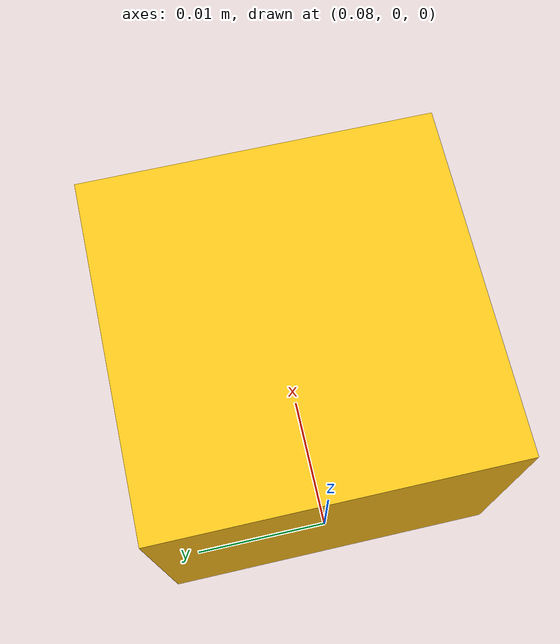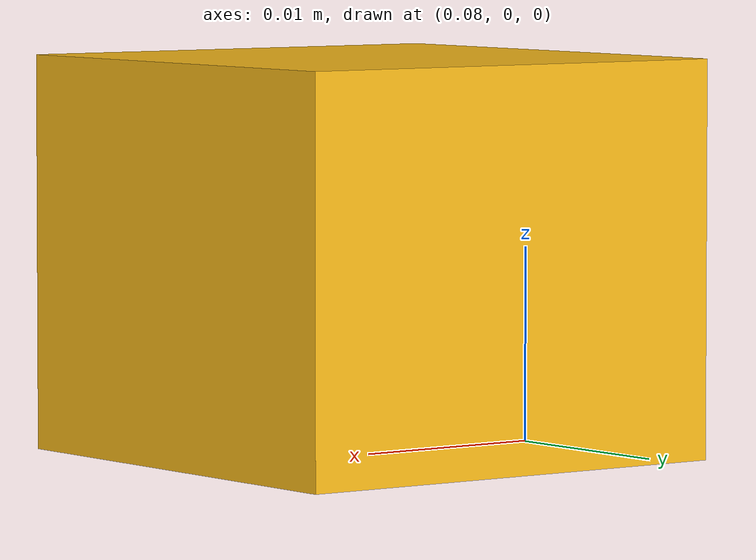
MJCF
<mujoco model="pick_object">
    <asset>
        <material name="pick_object_mat" rgba="1.0 0.75 0.1 1.0" reflectance="0.3" roughness="0.4"/>
    </asset>
    <worldbody>
        <body name="pick_object" pos="0.09 0 0.010">
            <freejoint name="pick_object_joint"/>
            <geom name="pick_object_geom" type="box" size="0.012 0.012 0.010" mass="0.012"
                  material="pick_object_mat" condim="4" friction="1.2 0.01 0.001" solref="0.02 1"/>
        </body>
    </worldbody>
</mujoco>
